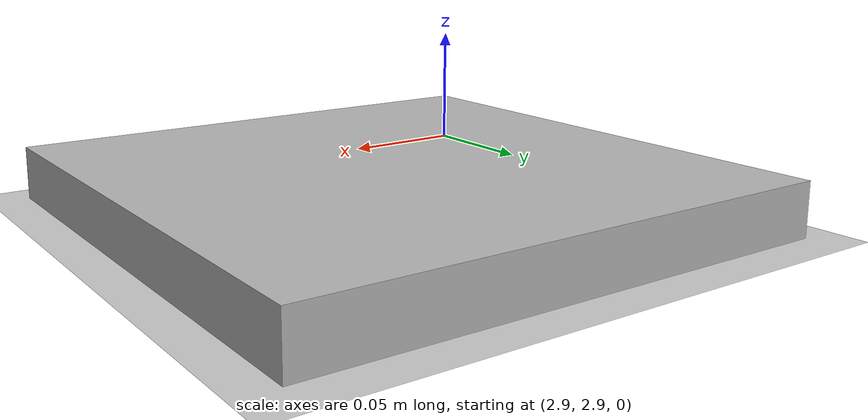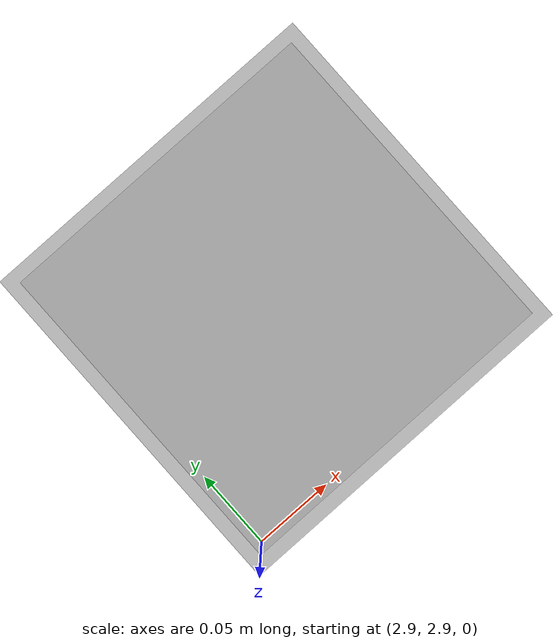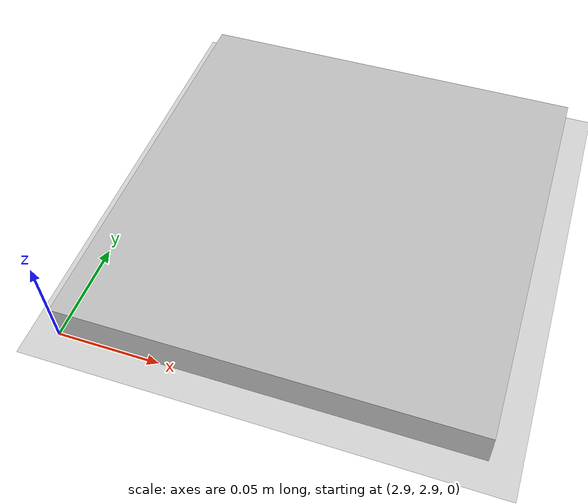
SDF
<?xml version="1.0" ?>
<sdf version="1.6">
  <world name="aruco_landing_pad">
    <!-- A global light source -->
    <include>
      <uri>model://sun</uri>
    </include>
    <!-- A ground plane -->
    <include>
      <uri>model://ground_plane</uri>
    </include>
    <model name='aruco_landing_pad'>
      <include>
        <uri>model://aruco_landing_pad</uri>
	      <pose> 3 3 0.01 0 0 -1.5707963 </pose>
      </include>
    </model>
    <physics name='default_physics' default='0' type='ode'>
      <gravity>0 0 -9.8066</gravity>
      <ode>
        <solver>
          <type>quick</type>
          <iters>150</iters>
          <sor>1.3</sor>
          <use_dynamic_moi_rescaling>0</use_dynamic_moi_rescaling>
        </solver>
        <constraints>
          <cfm>0.00001</cfm>
          <erp>0.2</erp>
          <contact_max_correcting_vel>1000</contact_max_correcting_vel>
          <contact_surface_layer>0.01</contact_surface_layer>
        </constraints>
      </ode>
      <max_step_size>0.004</max_step_size>
      <real_time_factor>1000.0</real_time_factor>
      <real_time_update_rate>250</real_time_update_rate>
      <magnetic_field>6.0e-6 2.3e-5 -4.2e-5</magnetic_field>
    </physics>
  </world>
</sdf>

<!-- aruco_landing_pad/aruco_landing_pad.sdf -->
<sdf version="1.6">
  <model name="aruco_landing_pad">
    <pose>0 0 0.01 0 0 0</pose>
    <static>true</static>
    <link name="link">
      <inertial>
        <mass>0.5</mass>
        <inertia>
          <ixx>0.001</ixx>
          <ixy>0</ixy>
          <ixz>0</ixz>
          <iyy>0.001</iyy>
          <iyz>0</iyz>
          <izz>0.001</izz>
        </inertia>
      </inertial>
      <collision name="collision">
        <geometry>
          <box>
            <size>0.2 0.2 0.02</size>
          </box>
        </geometry>
      </collision>
      <visual name="visual">
        <geometry>
          <box>
            <size>0.2 0.2 0.02</size>
          </box>
        </geometry>
        <material>
          <script>
            <uri>model://aruco_landing_pad/materials/scripts</uri>
	          <uri>model://aruco_landing_pad/materials/textures</uri>
            <name>Cube/aruco_landing_pad</name>
          </script>
        </material>
      </visual>
    </link>

    <plugin name="p3d_base_controller" filename="libgazebo_ros_p3d.so">
      <alwaysOn>true</alwaysOn>
      <updateRate>30.0</updateRate>
      <bodyName>link</bodyName>
      <topicName>ground_truth/landing_pad</topicName>
      <gaussianNoise>0.00</gaussianNoise>
      <frameName>world</frameName>
      <xyzOffsets>0 0 0</xyzOffsets>
      <rpyOffsets>0 0 0</rpyOffsets>
    </plugin>
  </model>
</sdf>
